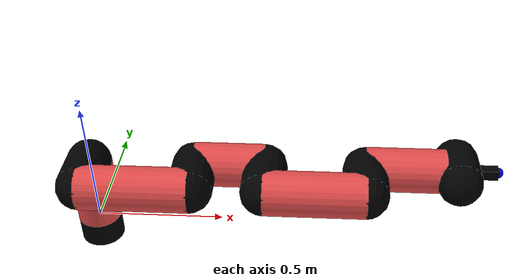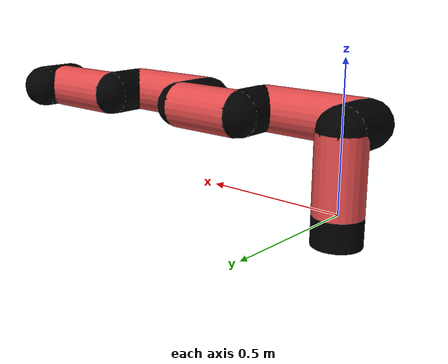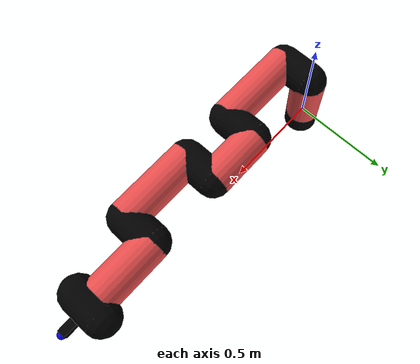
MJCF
<mujoco model="manipulator">
		<compiler angle="degree" coordinate="local" inertiafromgeom="auto" meshdir="meshes/"/>
		<option gravity="0 0 0" integrator="RK4" iterations="30" timestep="0.01"/>

		<default>
		<joint armature="1" limited="true" stiffness="10" damping="15" frictionloss="5.0"/>
		<geom conaffinity="1" condim="3" contype="1" friction=".5 .1 .1" margin="0.002"/>
		<motor ctrllimited="true"/>
		<position ctrllimited="true"/>
		</default>

		<asset>
		<texture builtin="gradient" height="100" rgb1="1.0 1.0 1.0" rgb2="1.0 1.0 1.0" type="skybox" width="100"/>
		<texture builtin="flat" height="32" name="arm_tex" rgb1="0.9 0.3 0.3" type="2d" width="32"/>
		<texture builtin="flat" height="32" name="gripper_tex" rgb1="0.0 0.0 0.0" type="cube" width="32"/>

		<material name="arm_mat" shininess="0.1" specular="0.1" texture="arm_tex"/>
		<material name="gripper_mat" shininess="1" specular="1" texture="gripper_tex"/>
		</asset>

		<worldbody>
		<light cutoff="45" diffuse=".8 .8 .8" dir="0 0.16 -1" directional="false" name="light" pos="0 -2.0 8.0" specular="0.3 0.3 0.3"/>

		<body name="base_link" pos="0 0 -0.1">
		<geom fromto="0 0 0 0 0 0.1" material="arm_mat" name="base_link" rgba="0.0 0.0 0.0 1" size="0.085" type="cylinder"/>
		</body>

		<body name="l1" pos="0 0 0">
<geom fromto="0 0 0 0 0 0.27" material="arm_mat" name="l1" rgba="0.9 0.3 0.3 1" size="0.085" type="cylinder"/>
<geom fromto="0 0 0.27 0 -0.16 0.27" material="arm_mat" name="l1_ex" rgba="0.0 0.0 0.0 1" size="0.085" type="capsule"/>
<joint axis="0 0 1" name="j1" pos="0 0 0" range="-90 90" damping="36.69" frictionloss="12.4"/>

<body name="l2" pos="0 -0.16 0.27">
<geom fromto="0 0 0 0.41 0 0" material="arm_mat" name="l2" rgba="0.9 0.3 0.3 1" size="0.085" type="cylinder"/>
<geom fromto="0.41 0 0 0.41 0.16 0" material="arm_mat" name="l2_ex" rgba="0.0 0.0 0.0 1" size="0.085" type="capsule"/>
<joint axis="0.0 1.0 0.0" name="j2" pos="0 0 0" range="-90 60" damping="26.9" frictionloss="12.92"/>

<body name="l3" pos="0.41 0.16 0">
<geom fromto="0 0 0 0.27 0 0" material="arm_mat" name="l3" rgba="0.9 0.3 0.3 1" size="0.085" type="cylinder"/>
<geom fromto="0.27 0 0 0.27 -0.16 0" material="arm_mat" name="l3_ex" rgba="0.0 0.0 0.0 1" size="0.085" type="capsule"/>
<joint axis="0.0 1.0 0.0" name="j3" pos="0 0 0" range="-30 60" damping="24.83" frictionloss="11.05"/>

<body name="l4" pos="0.27 -0.16 0">
<geom fromto="0 0 0 0.38 0 0" material="arm_mat" name="l4" rgba="0.9 0.3 0.3 1" size="0.085" type="cylinder"/>
<geom fromto="0.38 0 0 0.38 0.16 0" material="arm_mat" name="l4_ex" rgba="0.0 0.0 0.0 1" size="0.085" type="capsule"/>
<joint axis="0.0 1.0 0.0" name="j4" pos="0 0 0" range="-30 60" damping="27.19" frictionloss="12.29"/>

<body name="l5" pos="0.38 0.16 0">
<geom fromto="0 0 0 0.3 0 0" material="arm_mat" name="l5" rgba="0.9 0.3 0.3 1" size="0.085" type="cylinder"/>
<joint axis="0.0 1.0 0.0" name="j5" pos="0 0 0" range="-30 60" damping="38.74" frictionloss="8.41"/>

<body name="gripper" pos="0.3 0 0">
<geom fromto="0.05 -0.07 0 0.05 0.07 0" material="gripper_mat" name="gripper" rgba="0.0 0.0 0.0 1" size="0.085" type="capsule"/><joint axis="1 0 0" name="j6" pos="0 0 0" range="-90 90" damping="15" frictionloss="5.0"/><body name="finger" pos="0.1 0 0">
<geom fromto="0 0.0 0 0.1 0.0 0" material="gripper_mat" name="finger" rgba="0.0 0.0 0.0 1" size="0.020 0.06 0.06" type="box"/>
</body>
<site name="current" pos="0.2 0. 0.0" rgba="0. 0. 1.0 1" size="0.02" type="sphere"/>
</body>
</body>
</body>
</body>
</body>
</body>
</worldbody>
<actuator>
<motor ctrllimited="true" ctrlrange="-1.0 1.0" joint="j1" gear="56.87"/>
<motor ctrllimited="true" ctrlrange="-1.0 1.0" joint="j2" gear="93.57"/>
<motor ctrllimited="true" ctrlrange="-1.0 1.0" joint="j3" gear="96.21"/>
<motor ctrllimited="true" ctrlrange="-1.0 1.0" joint="j4" gear="88.98"/>
<motor ctrllimited="true" ctrlrange="-1.0 1.0" joint="j5" gear="90.82"/>
<motor ctrllimited="true" ctrlrange="-1.0 1.0" joint="j6" gear="80"/>
</actuator>
</mujoco>
